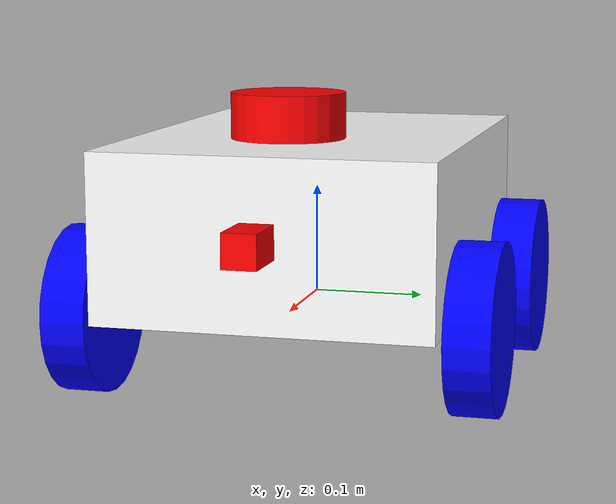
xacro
<?xml version="1.0"?>
<robot xmlns:xacro="http://www.ros.org/wiki/xacro"  name="wallter">

    <xacro:include filename="robot_core.xacro"/>

    <xacro:include filename="ros2_control.xacro"/>
    <xacro:include filename="lidar.xacro"/>
    <xacro:include filename="camera.xacro"/>

</robot>

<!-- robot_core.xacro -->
<robot xmlns:xacro="http://www.ros.org/wiki/xacro" >

    <xacro:include filename="inertial_macros.xacro"/>

    <material name="white">
        <color rgba="1.0 1.0 1.0 1.0"/>
    </material>

    <material name="orange">
        <color rgba="1.0 0.3 0.1 1.0"/>
    </material>

    <material name="blue">
        <color rgba="0.0 0.0 1.0 1.0"/>
    </material>

    <material name="black">
        <color rgba="0.0 0.0 0.0 1.0"/>
    </material>

    <material name="red">
        <color rgba="1.0 0.0 0.0 1.0"/>
    </material>

    <!-- base link-->
    <link name="base_link">

    </link>

    <joint name="chassis_joint" type="fixed">
        <parent link="base_link"/>
        <child link="chassis"/>
        <origin xyz="0.0 0.0 0.0"/>
    </joint>
<!-- chassis link-->
    <link name="chassis">
        <visual>
            <origin xyz="0.0 0.0 0.075"/>
            <geometry>
                <box size="0.4 0.3 0.15"/>
            </geometry>
            <material name="white"/>
        </visual>
        <collision>
            <origin xyz="0.0 0.0 0.075"/>
            <geometry>
                <box size="0.4 0.3 0.15"/>
            </geometry>
        </collision>
        <xacro:inertial_box mass="0.5" x="0.3" y="0.3" z="0.15">
            <origin xyz="0.15 0.0 0.075" rpy="0 0 0"/>
        </xacro:inertial_box>
    </link>
    <gazebo reference="chassis">
        <material>Gazebo/White</material>
    </gazebo>
<!--left front wheel-->

<joint name="left_front_wheel_joint" type="continuous">
    <parent link="base_link"/>
    <child link="left_front_wheel"/>
    <origin xyz="0.125 0.175 0.0" rpy="-${pi/2} 0.0 0.0"/>
    <axis xyz="0.0 0.0 1.0"/>
</joint>

<link name="left_front_wheel">
    <visual>
        <geometry>
            <cylinder radius="0.075" length="0.04"/>
        </geometry>
        <material name="blue"/>
    </visual>
    <collision>
        <geometry>
            <cylinder radius="0.075" length="0.04"/>
        </geometry>
    </collision>
    <xacro:inertial_cylinder mass="0.1" length="0.04" radius="0.05">
        <origin xyz="0.0 0.0 0.0" rpy="0.0 0.0 0.0"/>
    </xacro:inertial_cylinder>
</link>
<gazebo reference="left_front_wheel">
    <material>Gazebo/Blue</material>
</gazebo>

<!--right front wheel-->

<joint name="right_front_wheel_joint" type="continuous">
    <parent link="base_link"/>
    <child link="right_front_wheel"/>
    <origin xyz="0.125 -0.175 0.0" rpy="${pi/2} 0.0 0.0"/>
    <axis xyz="0.0 0.0 1.0"/>
</joint>

<link name="right_front_wheel">
    <visual>
        <geometry>
            <cylinder radius="0.075" length="0.04"/>
        </geometry>
        <material name="blue"/>
    </visual>
    <collision>
        <geometry>
            <cylinder radius="0.075" length="0.04"/>
        </geometry>
    </collision>
    <xacro:inertial_cylinder mass="0.1" length="0.04" radius="0.05">
        <origin xyz="0.0 0.0 0.0" rpy="0.0 0.0 0.0"/>
    </xacro:inertial_cylinder>
</link>
<gazebo reference="right_front_wheel">
    <material>Gazebo/Blue</material>
</gazebo>

<!--left back wheel-->

<joint name="left_back_wheel_joint" type="continuous">
    <parent link="base_link"/>
    <child link="left_back_wheel"/>
    <origin xyz="-0.125 0.175 0.0" rpy="-${pi/2} 0.0 0.0"/>
    <axis xyz="0.0 0.0 1.0"/>
</joint>

<link name="left_back_wheel">
    <visual>
        <geometry>
            <cylinder radius="0.075" length="0.04"/>
        </geometry>
        <material name="blue"/>
    </visual>
    <collision>
        <geometry>
            <cylinder radius="0.075" length="0.04"/>
        </geometry>
    </collision>
    <xacro:inertial_cylinder mass="0.1" length="0.04" radius="0.05">
        <origin xyz="0.0 0.0 0.0" rpy="0.0 0.0 0.0"/>
    </xacro:inertial_cylinder>
</link>
<gazebo reference="left_back_wheel">
    <material>Gazebo/Blue</material>
</gazebo>

<!--right back wheel-->

<joint name="right_back_wheel_joint" type="continuous">
    <parent link="base_link"/>
    <child link="right_back_wheel"/>
    <origin xyz="-0.125 -0.175 0.0" rpy="${pi/2} 0.0 0.0"/>
    <axis xyz="0.0 0.0 1.0"/>
</joint>

<link name="right_back_wheel">
    <visual>
        <geometry>
            <cylinder radius="0.075" length="0.04"/>
        </geometry>
        <material name="blue"/>
    </visual>
    <collision>
        <geometry>
            <cylinder radius="0.075" length="0.04"/>
        </geometry>
    </collision>
    <xacro:inertial_cylinder mass="0.1" length="0.04" radius="0.05">
        <origin xyz="0.0 0.0 0.0" rpy="0.0 0.0 0.0"/>
    </xacro:inertial_cylinder>
</link>
<gazebo reference="right_back_wheel">
    <material>Gazebo/Blue</material>
</gazebo>

</robot>

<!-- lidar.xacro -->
<robot xmlns:xacro="http://www.ros.org/wiki/xacro">

    <joint name="laser_joint" type="fixed">
        <parent link="chassis"/>
        <child link="laser_frame"/>
        <origin xyz="0.1 0.0 0.175" rpy="0.0 0.0 0.0"/>

    </joint>
    <link name="laser_frame">
        <visual>
            <geometry>
                <cylinder radius="0.05" length="0.04"/>
            </geometry>
            <material name="red"/>
        </visual>
        <collision>`
            <geometry>
                <cylinder radius="0.05" length="0.04"/>
            </geometry>
        </collision>
        <xacro:inertial_cylinder mass="0.1" length="0.04" radius="0.05">
            <origin xyz="0.0 0.0 0.0" rpy="0.0 0.0 0.0"/>
        </xacro:inertial_cylinder>
    </link>
    <gazebo reference="laser_frame">
        <sensor name="laser" type="ray">
            <pose>0 0 0 0 0 0</pose>
            <visualize>true</visualize>
            <update_rate>10</update_rate>
            <ray>
                <scan>
                    <horizontal>
                        <samples>360</samples>
                        <resolution>1</resolution>
                        <min_angle>-3.14</min_angle>
                        <max_angle>3.14</max_angle>
                    </horizontal>
                </scan>
                <range>
                    <min>0.3</min>
                    <max>12</max>
                    <resolution>0.01</resolution>
                </range>
            </ray>
            <plugin name="laser_controller" filename="libgazebo_ros_ray_sensor.so">
                <ros>
                    <argument>~out:=scan</argument>
                </ros>
                <output_type>sensor_msgs/LaserScan</output_type>
                <frame_name>laser_frame</frame_name>
            </plugin>
        </sensor>
        <material>Gazebo/Red</material>
    </gazebo>
</robot>

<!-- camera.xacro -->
<robot xmlns:xacro="http://www.ros.org/wiki/xacro">

    <joint name="camera_joint" type="fixed">
        <parent link="chassis"/>
        <child link="camera_link"/>
        <origin xyz="0.2 0.0 0.08" rpy="0.0 0.0 0.0"/>

    </joint>
    <link name="camera_link">
        <visual>
            <geometry>
                <box size="0.1 0.03 0.03"/>
            </geometry>
            <material name="red"/>
        </visual>
        <collision>`
            <geometry>
                <cylinder radius="0.05" length="0.04"/>
            </geometry>
        </collision>
        <xacro:inertial_cylinder mass="0.1" length="0.04" radius="0.05">
            <origin xyz="0.0 0.0 0.0" rpy="0.0 0.0 0.0"/>
        </xacro:inertial_cylinder>
    </link>

    <joint name="camera_optical_joint" type="fixed">
        <parent link="camera_link"/>
        <child link="camera_link_optical"/>
        <origin xyz="0.1 0.4 0.8" rpy="${-pi/2} 0.0 ${-pi/2}"/>

    </joint>

    <link name="camera_link_optical"> </link>

    <gazebo reference="camera_link">
        <material>Gazebo/Red</material>

        <sensor name="camera" type="camera">
            <pose>0 0 0 0 0 0</pose>
            <visualize>true</visualize>
            <update_rate>10</update_rate>
            <camera>
                <horizontal_fov>1.089</horizontal_fov>
                <image>
                    <format>R8G8B8</format>
                    <width>640</width>
                    <height>480</height>
                </image>
                <clip>
                    <near>0.05</near>
                    <far>8.0</far>
                </clip>
            </camera>
            <plugin name="camera_controller" filename="libgazebo_ros_camera.so">
                <frame_name>camera_link_optical</frame_name>
            </plugin>
        </sensor>
    </gazebo>
</robot>
